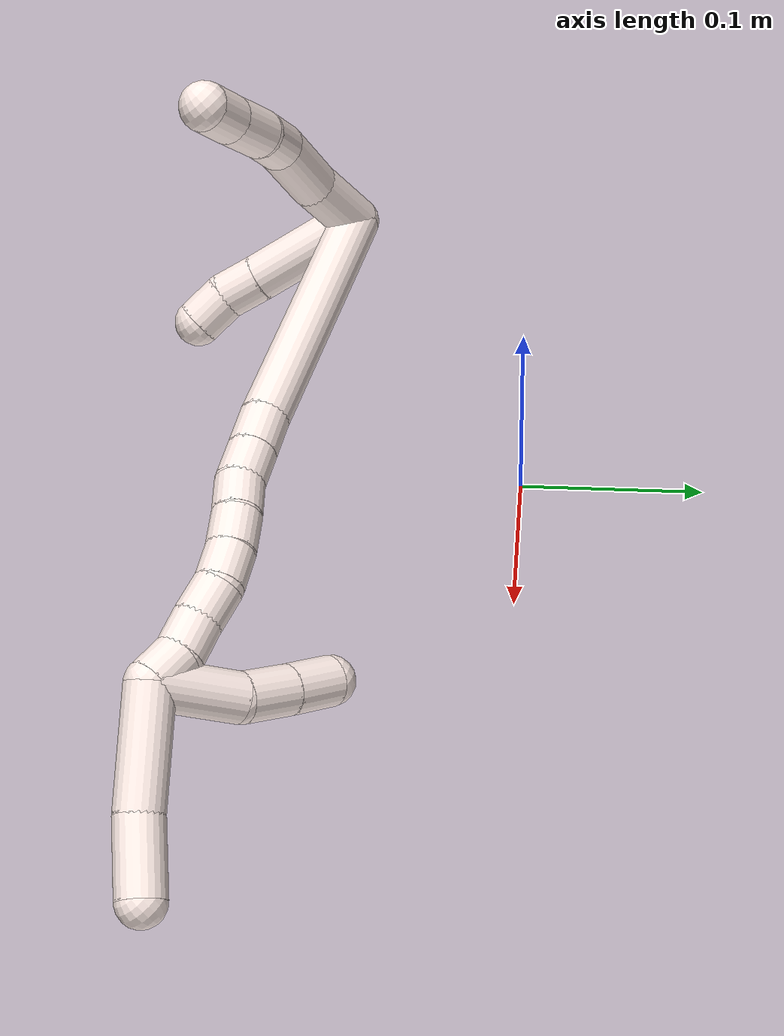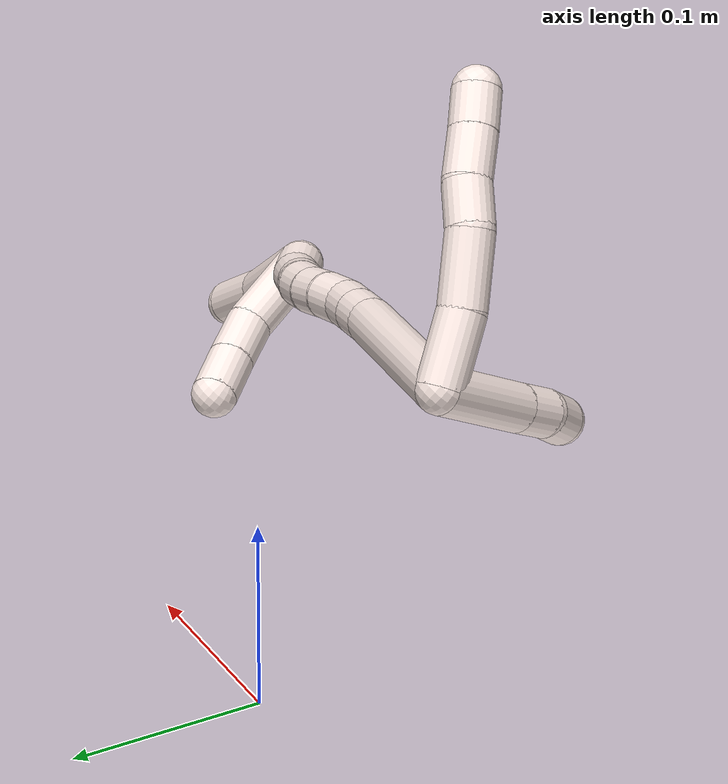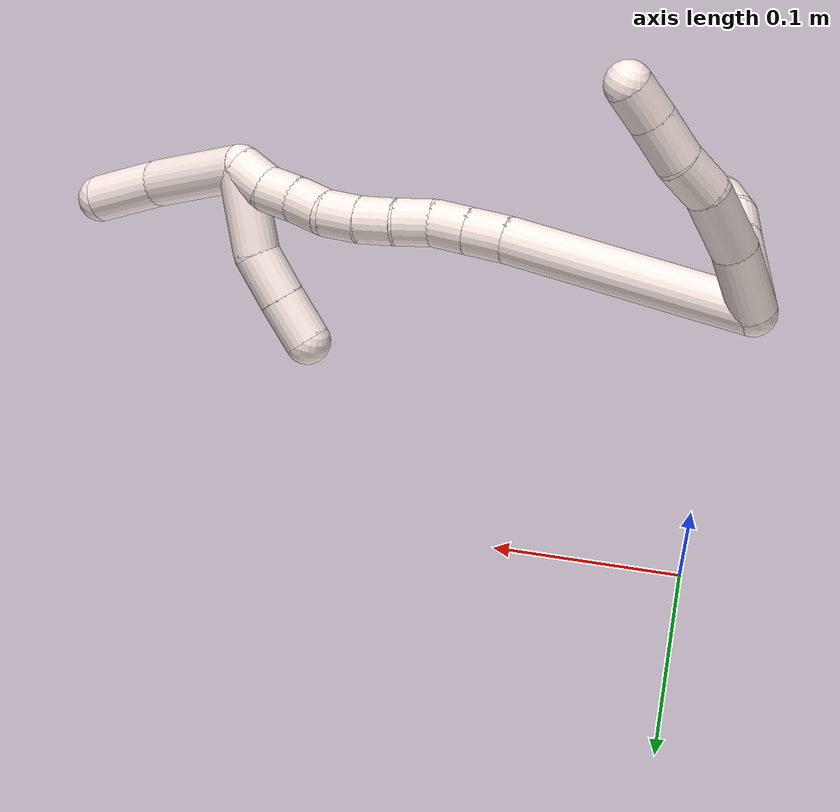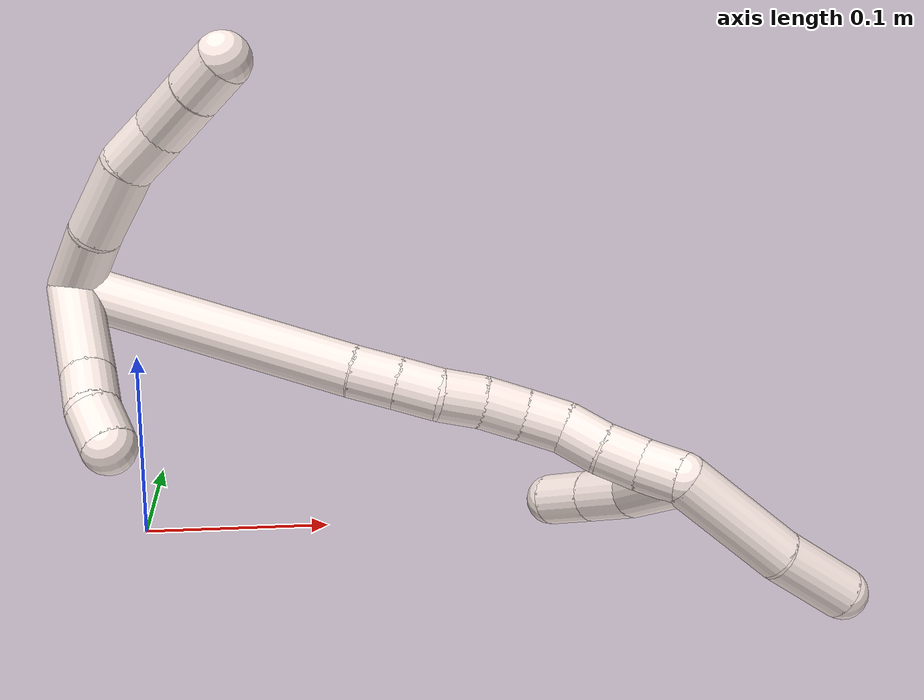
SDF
<sdf version="1.7">
 <world name="default">
  <model name="11">
   <static>0</static>
   <link name="11">
    <collision name="collision-cylinder-e_1_2_8">
     <pose>0.009611 -0.004149 -0.016295 2.89228 0.519248 2.25999</pose>
     <geometry><cylinder><radius>0.0125</radius><length>0.038735</length></cylinder></geometry>
     <surface>
      <friction><ode><mu>1.16</mu><mu2>1.16</mu2><slip1>0</slip1><slip2>0</slip2></ode></friction>
      <contact><ode><kp>1e+06</kp><kd>1</kd><max_vel>0</max_vel><min_depth>0.001</min_depth></ode></contact>
     </surface>
    </collision>
    <visual name="visual-cylinder-e_1_2_8">
     <pose>0.009611 -0.004149 -0.016295 2.89228 0.519248 2.25999</pose>
     <geometry><cylinder><radius>0.0125</radius><length>0.038735</length></cylinder></geometry>
     <material><ambient>1 0.933333 0.909804 1</ambient></material>
    </visual>
    <collision name="collision-cylinder-e_2_8_9">
     <pose>0.029797 -0.015333 -0.047473 2.7 0.571038 1.83597</pose>
     <geometry><cylinder><radius>0.0125</radius><length>0.039134</length></cylinder></geometry>
     <surface>
      <friction><ode><mu>1.16</mu><mu2>1.16</mu2><slip1>0</slip1><slip2>0</slip2></ode></friction>
      <contact><ode><kp>1e+06</kp><kd>1</kd><max_vel>0</max_vel><min_depth>0.001</min_depth></ode></contact>
     </surface>
    </collision>
    <visual name="visual-cylinder-e_2_8_9">
     <pose>0.029797 -0.015333 -0.047473 2.7 0.571038 1.83597</pose>
     <geometry><cylinder><radius>0.0125</radius><length>0.039134</length></cylinder></geometry>
     <material><ambient>1 0.933333 0.909804 1</ambient></material>
    </visual>
    <collision name="collision-cylinder-e_3_9_10">
     <pose>0.049204 -0.02662 -0.069346 2.59515 0.823576 2.00068</pose>
     <geometry><cylinder><radius>0.0125</radius><length>0.024075</length></cylinder></geometry>
     <surface>
      <friction><ode><mu>1.16</mu><mu2>1.16</mu2><slip1>0</slip1><slip2>0</slip2></ode></friction>
      <contact><ode><kp>1e+06</kp><kd>1</kd><max_vel>0</max_vel><min_depth>0.001</min_depth></ode></contact>
     </surface>
    </collision>
    <visual name="visual-cylinder-e_3_9_10">
     <pose>0.049204 -0.02662 -0.069346 2.59515 0.823576 2.00068</pose>
     <geometry><cylinder><radius>0.0125</radius><length>0.024075</length></cylinder></geometry>
     <material><ambient>1 0.933333 0.909804 1</ambient></material>
    </visual>
    <collision name="collision-cylinder-e_4_10_11">
     <pose>0.067456 -0.033382 -0.085261 2.86741 0.793382 2.50529</pose>
     <geometry><cylinder><radius>0.0125</radius><length>0.026439</length></cylinder></geometry>
     <surface>
      <friction><ode><mu>1.16</mu><mu2>1.16</mu2><slip1>0</slip1><slip2>0</slip2></ode></friction>
      <contact><ode><kp>1e+06</kp><kd>1</kd><max_vel>0</max_vel><min_depth>0.001</min_depth></ode></contact>
     </surface>
    </collision>
    <visual name="visual-cylinder-e_4_10_11">
     <pose>0.067456 -0.033382 -0.085261 2.86741 0.793382 2.50529</pose>
     <geometry><cylinder><radius>0.0125</radius><length>0.026439</length></cylinder></geometry>
     <material><ambient>1 0.933333 0.909804 1</ambient></material>
    </visual>
    <collision name="collision-cylinder-e_5_11_6">
     <pose>0.084616 -0.03835 -0.101323 2.80996 0.797943 2.38581</pose>
     <geometry><cylinder><radius>0.0125</radius><length>0.021617</length></cylinder></geometry>
     <surface>
      <friction><ode><mu>1.16</mu><mu2>1.16</mu2><slip1>0</slip1><slip2>0</slip2></ode></friction>
      <contact><ode><kp>1e+06</kp><kd>1</kd><max_vel>0</max_vel><min_depth>0.001</min_depth></ode></contact>
     </surface>
    </collision>
    <visual name="visual-cylinder-e_5_11_6">
     <pose>0.084616 -0.03835 -0.101323 2.80996 0.797943 2.38581</pose>
     <geometry><cylinder><radius>0.0125</radius><length>0.021617</length></cylinder></geometry>
     <material><ambient>1 0.933333 0.909804 1</ambient></material>
    </visual>
    <collision name="collision-cylinder-e_1_2_12">
     <pose>0.011516 0.027019 -0.004198 -1.72494 0.398628 -0.46315</pose>
     <geometry><cylinder><radius>0.0125</radius><length>0.059339</length></cylinder></geometry>
     <surface>
      <friction><ode><mu>1.16</mu><mu2>1.16</mu2><slip1>0</slip1><slip2>0</slip2></ode></friction>
      <contact><ode><kp>1e+06</kp><kd>1</kd><max_vel>0</max_vel><min_depth>0.001</min_depth></ode></contact>
     </surface>
    </collision>
    <visual name="visual-cylinder-e_1_2_12">
     <pose>0.011516 0.027019 -0.004198 -1.72494 0.398628 -0.46315</pose>
     <geometry><cylinder><radius>0.0125</radius><length>0.059339</length></cylinder></geometry>
     <material><ambient>1 0.933333 0.909804 1</ambient></material>
    </visual>
    <collision name="collision-cylinder-e_2_12_13">
     <pose>0.026902 0.063385 -0.010114 -1.75251 0.386649 -0.461657</pose>
     <geometry><cylinder><radius>0.0125</radius><length>0.020521</length></cylinder></geometry>
     <surface>
      <friction><ode><mu>1.16</mu><mu2>1.16</mu2><slip1>0</slip1><slip2>0</slip2></ode></friction>
      <contact><ode><kp>1e+06</kp><kd>1</kd><max_vel>0</max_vel><min_depth>0.001</min_depth></ode></contact>
     </surface>
    </collision>
    <visual name="visual-cylinder-e_2_12_13">
     <pose>0.026902 0.063385 -0.010114 -1.75251 0.386649 -0.461657</pose>
     <geometry><cylinder><radius>0.0125</radius><length>0.020521</length></cylinder></geometry>
     <material><ambient>1 0.933333 0.909804 1</ambient></material>
    </visual>
    <collision name="collision-cylinder-e_3_13_5">
     <pose>0.036181 0.081206 -0.011262 -1.50374 0.567156 -0.532114</pose>
     <geometry><cylinder><radius>0.0125</radius><length>0.020139</length></cylinder></geometry>
     <surface>
      <friction><ode><mu>1.16</mu><mu2>1.16</mu2><slip1>0</slip1><slip2>0</slip2></ode></friction>
      <contact><ode><kp>1e+06</kp><kd>1</kd><max_vel>0</max_vel><min_depth>0.001</min_depth></ode></contact>
     </surface>
    </collision>
    <visual name="visual-cylinder-e_3_13_5">
     <pose>0.036181 0.081206 -0.011262 -1.50374 0.567156 -0.532114</pose>
     <geometry><cylinder><radius>0.0125</radius><length>0.020139</length></cylinder></geometry>
     <material><ambient>1 0.933333 0.909804 1</ambient></material>
    </visual>
    <collision name="collision-cylinder-e_1_2_14">
     <pose>0.066285 0.01316 0.012914 -0.794834 1.29949 -0.617462</pose>
     <geometry><cylinder><radius>0.0125</radius><length>0.137602</length></cylinder></geometry>
     <surface>
      <friction><ode><mu>1.16</mu><mu2>1.16</mu2><slip1>0</slip1><slip2>0</slip2></ode></friction>
      <contact><ode><kp>1e+06</kp><kd>1</kd><max_vel>0</max_vel><min_depth>0.001</min_depth></ode></contact>
     </surface>
    </collision>
    <visual name="visual-cylinder-e_1_2_14">
     <pose>0.066285 0.01316 0.012914 -0.794834 1.29949 -0.617462</pose>
     <geometry><cylinder><radius>0.0125</radius><length>0.137602</length></cylinder></geometry>
     <material><ambient>1 0.933333 0.909804 1</ambient></material>
    </visual>
    <collision name="collision-cylinder-e_2_14_15">
     <pose>0.143065 0.027807 0.028274 -0.546314 1.30453 -0.421606</pose>
     <geometry><cylinder><radius>0.0125</radius><length>0.021758</length></cylinder></geometry>
     <surface>
      <friction><ode><mu>1.16</mu><mu2>1.16</mu2><slip1>0</slip1><slip2>0</slip2></ode></friction>
      <contact><ode><kp>1e+06</kp><kd>1</kd><max_vel>0</max_vel><min_depth>0.001</min_depth></ode></contact>
     </surface>
    </collision>
    <visual name="visual-cylinder-e_2_14_15">
     <pose>0.143065 0.027807 0.028274 -0.546314 1.30453 -0.421606</pose>
     <geometry><cylinder><radius>0.0125</radius><length>0.021758</length></cylinder></geometry>
     <material><ambient>1 0.933333 0.909804 1</ambient></material>
    </visual>
    <collision name="collision-cylinder-e_3_15_16">
     <pose>0.163306 0.030771 0.033009 -0.572815 1.29823 -0.439722</pose>
     <geometry><cylinder><radius>0.0125</radius><length>0.020238</length></cylinder></geometry>
     <surface>
      <friction><ode><mu>1.16</mu><mu2>1.16</mu2><slip1>0</slip1><slip2>0</slip2></ode></friction>
      <contact><ode><kp>1e+06</kp><kd>1</kd><max_vel>0</max_vel><min_depth>0.001</min_depth></ode></contact>
     </surface>
    </collision>
    <visual name="visual-cylinder-e_3_15_16">
     <pose>0.163306 0.030771 0.033009 -0.572815 1.29823 -0.439722</pose>
     <geometry><cylinder><radius>0.0125</radius><length>0.020238</length></cylinder></geometry>
     <material><ambient>1 0.933333 0.909804 1</ambient></material>
    </visual>
    <collision name="collision-cylinder-e_4_16_17">
     <pose>0.182432 0.031773 0.038858 0.1325 1.2052 0.091225</pose>
     <geometry><cylinder><radius>0.0125</radius><length>0.020089</length></cylinder></geometry>
     <surface>
      <friction><ode><mu>1.16</mu><mu2>1.16</mu2><slip1>0</slip1><slip2>0</slip2></ode></friction>
      <contact><ode><kp>1e+06</kp><kd>1</kd><max_vel>0</max_vel><min_depth>0.001</min_depth></ode></contact>
     </surface>
    </collision>
    <visual name="visual-cylinder-e_4_16_17">
     <pose>0.182432 0.031773 0.038858 0.1325 1.2052 0.091225</pose>
     <geometry><cylinder><radius>0.0125</radius><length>0.020089</length></cylinder></geometry>
     <material><ambient>1 0.933333 0.909804 1</ambient></material>
    </visual>
    <collision name="collision-cylinder-e_5_17_18">
     <pose>0.201176 0.032194 0.046118 -0.237399 1.18453 -0.160143</pose>
     <geometry><cylinder><radius>0.0125</radius><length>0.020216</length></cylinder></geometry>
     <surface>
      <friction><ode><mu>1.16</mu><mu2>1.16</mu2><slip1>0</slip1><slip2>0</slip2></ode></friction>
      <contact><ode><kp>1e+06</kp><kd>1</kd><max_vel>0</max_vel><min_depth>0.001</min_depth></ode></contact>
     </surface>
    </collision>
    <visual name="visual-cylinder-e_5_17_18">
     <pose>0.201176 0.032194 0.046118 -0.237399 1.18453 -0.160143</pose>
     <geometry><cylinder><radius>0.0125</radius><length>0.020216</length></cylinder></geometry>
     <material><ambient>1 0.933333 0.909804 1</ambient></material>
    </visual>
    <collision name="collision-cylinder-e_6_18_19">
     <pose>0.220064 0.034729 0.052506 -0.547999 1.25166 -0.40083</pose>
     <geometry><cylinder><radius>0.0125</radius><length>0.020063</length></cylinder></geometry>
     <surface>
      <friction><ode><mu>1.16</mu><mu2>1.16</mu2><slip1>0</slip1><slip2>0</slip2></ode></friction>
      <contact><ode><kp>1e+06</kp><kd>1</kd><max_vel>0</max_vel><min_depth>0.001</min_depth></ode></contact>
     </surface>
    </collision>
    <visual name="visual-cylinder-e_6_18_19">
     <pose>0.220064 0.034729 0.052506 -0.547999 1.25166 -0.40083</pose>
     <geometry><cylinder><radius>0.0125</radius><length>0.020063</length></cylinder></geometry>
     <material><ambient>1 0.933333 0.909804 1</ambient></material>
    </visual>
    <collision name="collision-cylinder-e_7_19_20">
     <pose>0.238442 0.040714 0.05687 -1.2023 1.08649 -0.785263</pose>
     <geometry><cylinder><radius>0.0125</radius><length>0.020006</length></cylinder></geometry>
     <surface>
      <friction><ode><mu>1.16</mu><mu2>1.16</mu2><slip1>0</slip1><slip2>0</slip2></ode></friction>
      <contact><ode><kp>1e+06</kp><kd>1</kd><max_vel>0</max_vel><min_depth>0.001</min_depth></ode></contact>
     </surface>
    </collision>
    <visual name="visual-cylinder-e_7_19_20">
     <pose>0.238442 0.040714 0.05687 -1.2023 1.08649 -0.785263</pose>
     <geometry><cylinder><radius>0.0125</radius><length>0.020006</length></cylinder></geometry>
     <material><ambient>1 0.933333 0.909804 1</ambient></material>
    </visual>
    <collision name="collision-cylinder-e_8_20_21">
     <pose>0.256663 0.04808 0.06034 -1.03551 1.21203 -0.751908</pose>
     <geometry><cylinder><radius>0.0125</radius><length>0.020009</length></cylinder></geometry>
     <surface>
      <friction><ode><mu>1.16</mu><mu2>1.16</mu2><slip1>0</slip1><slip2>0</slip2></ode></friction>
      <contact><ode><kp>1e+06</kp><kd>1</kd><max_vel>0</max_vel><min_depth>0.001</min_depth></ode></contact>
     </surface>
    </collision>
    <visual name="visual-cylinder-e_8_20_21">
     <pose>0.256663 0.04808 0.06034 -1.03551 1.21203 -0.751908</pose>
     <geometry><cylinder><radius>0.0125</radius><length>0.020009</length></cylinder></geometry>
     <material><ambient>1 0.933333 0.909804 1</ambient></material>
    </visual>
    <collision name="collision-cylinder-e_9_21_1">
     <pose>0.27524 0.054881 0.061094 -1.83859 1.16841 -1.42862</pose>
     <geometry><cylinder><radius>0.0125</radius><length>0.020017</length></cylinder></geometry>
     <surface>
      <friction><ode><mu>1.16</mu><mu2>1.16</mu2><slip1>0</slip1><slip2>0</slip2></ode></friction>
      <contact><ode><kp>1e+06</kp><kd>1</kd><max_vel>0</max_vel><min_depth>0.001</min_depth></ode></contact>
     </surface>
    </collision>
    <visual name="visual-cylinder-e_9_21_1">
     <pose>0.27524 0.054881 0.061094 -1.83859 1.16841 -1.42862</pose>
     <geometry><cylinder><radius>0.0125</radius><length>0.020017</length></cylinder></geometry>
     <material><ambient>1 0.933333 0.909804 1</ambient></material>
    </visual>
    <collision name="collision-cylinder-e_1_1_22">
     <pose>0.272472 0.052468 0.078969 0.316482 -0.541797 -0.088578</pose>
     <geometry><cylinder><radius>0.0125</radius><length>0.046452</length></cylinder></geometry>
     <surface>
      <friction><ode><mu>1.16</mu><mu2>1.16</mu2><slip1>0</slip1><slip2>0</slip2></ode></friction>
      <contact><ode><kp>1e+06</kp><kd>1</kd><max_vel>0</max_vel><min_depth>0.001</min_depth></ode></contact>
     </surface>
    </collision>
    <visual name="visual-cylinder-e_1_1_22">
     <pose>0.272472 0.052468 0.078969 0.316482 -0.541797 -0.088578</pose>
     <geometry><cylinder><radius>0.0125</radius><length>0.046452</length></cylinder></geometry>
     <material><ambient>1 0.933333 0.909804 1</ambient></material>
    </visual>
    <collision name="collision-cylinder-e_2_22_23">
     <pose>0.249943 0.04347 0.106123 0.327905 -0.880891 -0.155635</pose>
     <geometry><cylinder><radius>0.0125</radius><length>0.027362</length></cylinder></geometry>
     <surface>
      <friction><ode><mu>1.16</mu><mu2>1.16</mu2><slip1>0</slip1><slip2>0</slip2></ode></friction>
      <contact><ode><kp>1e+06</kp><kd>1</kd><max_vel>0</max_vel><min_depth>0.001</min_depth></ode></contact>
     </surface>
    </collision>
    <visual name="visual-cylinder-e_2_22_23">
     <pose>0.249943 0.04347 0.106123 0.327905 -0.880891 -0.155635</pose>
     <geometry><cylinder><radius>0.0125</radius><length>0.027362</length></cylinder></geometry>
     <material><ambient>1 0.933333 0.909804 1</ambient></material>
    </visual>
    <collision name="collision-cylinder-e_3_23_4">
     <pose>0.229015 0.038088 0.121925 0.328713 -0.91484 -0.162917</pose>
     <geometry><cylinder><radius>0.0125</radius><length>0.026186</length></cylinder></geometry>
     <surface>
      <friction><ode><mu>1.16</mu><mu2>1.16</mu2><slip1>0</slip1><slip2>0</slip2></ode></friction>
      <contact><ode><kp>1e+06</kp><kd>1</kd><max_vel>0</max_vel><min_depth>0.001</min_depth></ode></contact>
     </surface>
    </collision>
    <visual name="visual-cylinder-e_3_23_4">
     <pose>0.229015 0.038088 0.121925 0.328713 -0.91484 -0.162917</pose>
     <geometry><cylinder><radius>0.0125</radius><length>0.026186</length></cylinder></geometry>
     <material><ambient>1 0.933333 0.909804 1</ambient></material>
    </visual>
    <collision name="collision-cylinder-e_1_1_24">
     <pose>0.306775 0.067976 0.078221 -0.473844 0.830131 -0.212006</pose>
     <geometry><cylinder><radius>0.0125</radius><length>0.060501</length></cylinder></geometry>
     <surface>
      <friction><ode><mu>1.16</mu><mu2>1.16</mu2><slip1>0</slip1><slip2>0</slip2></ode></friction>
      <contact><ode><kp>1e+06</kp><kd>1</kd><max_vel>0</max_vel><min_depth>0.001</min_depth></ode></contact>
     </surface>
    </collision>
    <visual name="visual-cylinder-e_1_1_24">
     <pose>0.306775 0.067976 0.078221 -0.473844 0.830131 -0.212006</pose>
     <geometry><cylinder><radius>0.0125</radius><length>0.060501</length></cylinder></geometry>
     <material><ambient>1 0.933333 0.909804 1</ambient></material>
    </visual>
    <collision name="collision-cylinder-e_2_24_3">
     <pose>0.344054 0.080515 0.108875 -0.252685 0.858977 -0.116219</pose>
     <geometry><cylinder><radius>0.0125</radius><length>0.039499</length></cylinder></geometry>
     <surface>
      <friction><ode><mu>1.16</mu><mu2>1.16</mu2><slip1>0</slip1><slip2>0</slip2></ode></friction>
      <contact><ode><kp>1e+06</kp><kd>1</kd><max_vel>0</max_vel><min_depth>0.001</min_depth></ode></contact>
     </surface>
    </collision>
    <visual name="visual-cylinder-e_2_24_3">
     <pose>0.344054 0.080515 0.108875 -0.252685 0.858977 -0.116219</pose>
     <geometry><cylinder><radius>0.0125</radius><length>0.039499</length></cylinder></geometry>
     <material><ambient>1 0.933333 0.909804 1</ambient></material>
    </visual>
    <collision name="collision-sphere-3">
     <pose>0.359008 0.08374 0.121366 0 -0 0</pose>
     <geometry><sphere><radius>0.0125</radius></sphere></geometry>
     <surface>
      <friction><ode><mu>1.16</mu><mu2>1.16</mu2><slip1>0</slip1><slip2>0</slip2></ode></friction>
      <contact><ode><kp>1e+06</kp><kd>1</kd><max_vel>0</max_vel><min_depth>0.001</min_depth></ode></contact>
     </surface>
    </collision>
    <visual name="visual-sphere-3">
     <pose>0.359008 0.08374 0.121366 0 -0 0</pose>
     <geometry><sphere><radius>0.0125</radius></sphere></geometry>
     <material><ambient>1 0.933333 0.909804 1</ambient></material>
    </visual>
    <collision name="collision-sphere-24">
     <pose>0.3291 0.07729 0.096384 0 -0 0</pose>
     <geometry><sphere><radius>0.0125</radius></sphere></geometry>
     <surface>
      <friction><ode><mu>1.16</mu><mu2>1.16</mu2><slip1>0</slip1><slip2>0</slip2></ode></friction>
      <contact><ode><kp>1e+06</kp><kd>1</kd><max_vel>0</max_vel><min_depth>0.001</min_depth></ode></contact>
     </surface>
    </collision>
    <visual name="visual-sphere-24">
     <pose>0.3291 0.07729 0.096384 0 -0 0</pose>
     <geometry><sphere><radius>0.0125</radius></sphere></geometry>
     <material><ambient>1 0.933333 0.909804 1</ambient></material>
    </visual>
    <collision name="collision-sphere-4">
     <pose>0.218639 0.03551 0.129483 0 -0 0</pose>
     <geometry><sphere><radius>0.0125</radius></sphere></geometry>
     <surface>
      <friction><ode><mu>1.16</mu><mu2>1.16</mu2><slip1>0</slip1><slip2>0</slip2></ode></friction>
      <contact><ode><kp>1e+06</kp><kd>1</kd><max_vel>0</max_vel><min_depth>0.001</min_depth></ode></contact>
     </surface>
    </collision>
    <visual name="visual-sphere-4">
     <pose>0.218639 0.03551 0.129483 0 -0 0</pose>
     <geometry><sphere><radius>0.0125</radius></sphere></geometry>
     <material><ambient>1 0.933333 0.909804 1</ambient></material>
    </visual>
    <collision name="collision-sphere-23">
     <pose>0.239391 0.040666 0.114367 0 -0 0</pose>
     <geometry><sphere><radius>0.0125</radius></sphere></geometry>
     <surface>
      <friction><ode><mu>1.16</mu><mu2>1.16</mu2><slip1>0</slip1><slip2>0</slip2></ode></friction>
      <contact><ode><kp>1e+06</kp><kd>1</kd><max_vel>0</max_vel><min_depth>0.001</min_depth></ode></contact>
     </surface>
    </collision>
    <visual name="visual-sphere-23">
     <pose>0.239391 0.040666 0.114367 0 -0 0</pose>
     <geometry><sphere><radius>0.0125</radius></sphere></geometry>
     <material><ambient>1 0.933333 0.909804 1</ambient></material>
    </visual>
    <collision name="collision-sphere-22">
     <pose>0.260495 0.046275 0.09788 0 -0 0</pose>
     <geometry><sphere><radius>0.0125</radius></sphere></geometry>
     <surface>
      <friction><ode><mu>1.16</mu><mu2>1.16</mu2><slip1>0</slip1><slip2>0</slip2></ode></friction>
      <contact><ode><kp>1e+06</kp><kd>1</kd><max_vel>0</max_vel><min_depth>0.001</min_depth></ode></contact>
     </surface>
    </collision>
    <visual name="visual-sphere-22">
     <pose>0.260495 0.046275 0.09788 0 -0 0</pose>
     <geometry><sphere><radius>0.0125</radius></sphere></geometry>
     <material><ambient>1 0.933333 0.909804 1</ambient></material>
    </visual>
    <collision name="collision-sphere-1">
     <pose>0.284449 0.058661 0.060057 0 -0 0</pose>
     <geometry><sphere><radius>0.0125</radius></sphere></geometry>
     <surface>
      <friction><ode><mu>1.16</mu><mu2>1.16</mu2><slip1>0</slip1><slip2>0</slip2></ode></friction>
      <contact><ode><kp>1e+06</kp><kd>1</kd><max_vel>0</max_vel><min_depth>0.001</min_depth></ode></contact>
     </surface>
    </collision>
    <visual name="visual-sphere-1">
     <pose>0.284449 0.058661 0.060057 0 -0 0</pose>
     <geometry><sphere><radius>0.0125</radius></sphere></geometry>
     <material><ambient>1 0.933333 0.909804 1</ambient></material>
    </visual>
    <collision name="collision-sphere-21">
     <pose>0.266031 0.051102 0.062132 0 -0 0</pose>
     <geometry><sphere><radius>0.0125</radius></sphere></geometry>
     <surface>
      <friction><ode><mu>1.16</mu><mu2>1.16</mu2><slip1>0</slip1><slip2>0</slip2></ode></friction>
      <contact><ode><kp>1e+06</kp><kd>1</kd><max_vel>0</max_vel><min_depth>0.001</min_depth></ode></contact>
     </surface>
    </collision>
    <visual name="visual-sphere-21">
     <pose>0.266031 0.051102 0.062132 0 -0 0</pose>
     <geometry><sphere><radius>0.0125</radius></sphere></geometry>
     <material><ambient>1 0.933333 0.909804 1</ambient></material>
    </visual>
    <collision name="collision-sphere-6">
     <pose>0.092354 -0.040807 -0.108458 0 -0 0</pose>
     <geometry><sphere><radius>0.0125</radius></sphere></geometry>
     <surface>
      <friction><ode><mu>1.16</mu><mu2>1.16</mu2><slip1>0</slip1><slip2>0</slip2></ode></friction>
      <contact><ode><kp>1e+06</kp><kd>1</kd><max_vel>0</max_vel><min_depth>0.001</min_depth></ode></contact>
     </surface>
    </collision>
    <visual name="visual-sphere-6">
     <pose>0.092354 -0.040807 -0.108458 0 -0 0</pose>
     <geometry><sphere><radius>0.0125</radius></sphere></geometry>
     <material><ambient>1 0.933333 0.909804 1</ambient></material>
    </visual>
    <collision name="collision-sphere-11">
     <pose>0.076878 -0.035893 -0.094188 0 -0 0</pose>
     <geometry><sphere><radius>0.0125</radius></sphere></geometry>
     <surface>
      <friction><ode><mu>1.16</mu><mu2>1.16</mu2><slip1>0</slip1><slip2>0</slip2></ode></friction>
      <contact><ode><kp>1e+06</kp><kd>1</kd><max_vel>0</max_vel><min_depth>0.001</min_depth></ode></contact>
     </surface>
    </collision>
    <visual name="visual-sphere-11">
     <pose>0.076878 -0.035893 -0.094188 0 -0 0</pose>
     <geometry><sphere><radius>0.0125</radius></sphere></geometry>
     <material><ambient>1 0.933333 0.909804 1</ambient></material>
    </visual>
    <collision name="collision-sphere-10">
     <pose>0.058034 -0.030871 -0.076335 0 -0 0</pose>
     <geometry><sphere><radius>0.0125</radius></sphere></geometry>
     <surface>
      <friction><ode><mu>1.16</mu><mu2>1.16</mu2><slip1>0</slip1><slip2>0</slip2></ode></friction>
      <contact><ode><kp>1e+06</kp><kd>1</kd><max_vel>0</max_vel><min_depth>0.001</min_depth></ode></contact>
     </surface>
    </collision>
    <visual name="visual-sphere-10">
     <pose>0.058034 -0.030871 -0.076335 0 -0 0</pose>
     <geometry><sphere><radius>0.0125</radius></sphere></geometry>
     <material><ambient>1 0.933333 0.909804 1</ambient></material>
    </visual>
    <collision name="collision-sphere-9">
     <pose>0.040374 -0.022369 -0.062356 0 -0 0</pose>
     <geometry><sphere><radius>0.0125</radius></sphere></geometry>
     <surface>
      <friction><ode><mu>1.16</mu><mu2>1.16</mu2><slip1>0</slip1><slip2>0</slip2></ode></friction>
      <contact><ode><kp>1e+06</kp><kd>1</kd><max_vel>0</max_vel><min_depth>0.001</min_depth></ode></contact>
     </surface>
    </collision>
    <visual name="visual-sphere-9">
     <pose>0.040374 -0.022369 -0.062356 0 -0 0</pose>
     <geometry><sphere><radius>0.0125</radius></sphere></geometry>
     <material><ambient>1 0.933333 0.909804 1</ambient></material>
    </visual>
    <collision name="collision-sphere-2">
     <geometry><sphere><radius>0.0125</radius></sphere></geometry>
     <surface>
      <friction><ode><mu>1.16</mu><mu2>1.16</mu2><slip1>0</slip1><slip2>0</slip2></ode></friction>
      <contact><ode><kp>1e+06</kp><kd>1</kd><max_vel>0</max_vel><min_depth>0.001</min_depth></ode></contact>
     </surface>
    </collision>
    <visual name="visual-sphere-2">
     <geometry><sphere><radius>0.0125</radius></sphere></geometry>
     <material><ambient>1 0.933333 0.909804 1</ambient></material>
    </visual>
    <collision name="collision-sphere-19">
     <pose>0.229589 0.036369 0.055193 0 -0 0</pose>
     <geometry><sphere><radius>0.0125</radius></sphere></geometry>
     <surface>
      <friction><ode><mu>1.16</mu><mu2>1.16</mu2><slip1>0</slip1><slip2>0</slip2></ode></friction>
      <contact><ode><kp>1e+06</kp><kd>1</kd><max_vel>0</max_vel><min_depth>0.001</min_depth></ode></contact>
     </surface>
    </collision>
    <visual name="visual-sphere-19">
     <pose>0.229589 0.036369 0.055193 0 -0 0</pose>
     <geometry><sphere><radius>0.0125</radius></sphere></geometry>
     <material><ambient>1 0.933333 0.909804 1</ambient></material>
    </visual>
    <collision name="collision-sphere-8">
     <pose>0.019221 -0.008298 -0.03259 0 -0 0</pose>
     <geometry><sphere><radius>0.0125</radius></sphere></geometry>
     <surface>
      <friction><ode><mu>1.16</mu><mu2>1.16</mu2><slip1>0</slip1><slip2>0</slip2></ode></friction>
      <contact><ode><kp>1e+06</kp><kd>1</kd><max_vel>0</max_vel><min_depth>0.001</min_depth></ode></contact>
     </surface>
    </collision>
    <visual name="visual-sphere-8">
     <pose>0.019221 -0.008298 -0.03259 0 -0 0</pose>
     <geometry><sphere><radius>0.0125</radius></sphere></geometry>
     <material><ambient>1 0.933333 0.909804 1</ambient></material>
    </visual>
    <collision name="collision-sphere-12">
     <pose>0.023033 0.054038 -0.008396 0 -0 0</pose>
     <geometry><sphere><radius>0.0125</radius></sphere></geometry>
     <surface>
      <friction><ode><mu>1.16</mu><mu2>1.16</mu2><slip1>0</slip1><slip2>0</slip2></ode></friction>
      <contact><ode><kp>1e+06</kp><kd>1</kd><max_vel>0</max_vel><min_depth>0.001</min_depth></ode></contact>
     </surface>
    </collision>
    <visual name="visual-sphere-12">
     <pose>0.023033 0.054038 -0.008396 0 -0 0</pose>
     <geometry><sphere><radius>0.0125</radius></sphere></geometry>
     <material><ambient>1 0.933333 0.909804 1</ambient></material>
    </visual>
    <collision name="collision-sphere-13">
     <pose>0.030771 0.072732 -0.011831 0 -0 0</pose>
     <geometry><sphere><radius>0.0125</radius></sphere></geometry>
     <surface>
      <friction><ode><mu>1.16</mu><mu2>1.16</mu2><slip1>0</slip1><slip2>0</slip2></ode></friction>
      <contact><ode><kp>1e+06</kp><kd>1</kd><max_vel>0</max_vel><min_depth>0.001</min_depth></ode></contact>
     </surface>
    </collision>
    <visual name="visual-sphere-13">
     <pose>0.030771 0.072732 -0.011831 0 -0 0</pose>
     <geometry><sphere><radius>0.0125</radius></sphere></geometry>
     <material><ambient>1 0.933333 0.909804 1</ambient></material>
    </visual>
    <collision name="collision-sphere-5">
     <pose>0.041591 0.08968 -0.010693 0 -0 0</pose>
     <geometry><sphere><radius>0.0125</radius></sphere></geometry>
     <surface>
      <friction><ode><mu>1.16</mu><mu2>1.16</mu2><slip1>0</slip1><slip2>0</slip2></ode></friction>
      <contact><ode><kp>1e+06</kp><kd>1</kd><max_vel>0</max_vel><min_depth>0.001</min_depth></ode></contact>
     </surface>
    </collision>
    <visual name="visual-sphere-5">
     <pose>0.041591 0.08968 -0.010693 0 -0 0</pose>
     <geometry><sphere><radius>0.0125</radius></sphere></geometry>
     <material><ambient>1 0.933333 0.909804 1</ambient></material>
    </visual>
    <collision name="collision-sphere-14">
     <pose>0.132569 0.02632 0.025828 0 -0 0</pose>
     <geometry><sphere><radius>0.0125</radius></sphere></geometry>
     <surface>
      <friction><ode><mu>1.16</mu><mu2>1.16</mu2><slip1>0</slip1><slip2>0</slip2></ode></friction>
      <contact><ode><kp>1e+06</kp><kd>1</kd><max_vel>0</max_vel><min_depth>0.001</min_depth></ode></contact>
     </surface>
    </collision>
    <visual name="visual-sphere-14">
     <pose>0.132569 0.02632 0.025828 0 -0 0</pose>
     <geometry><sphere><radius>0.0125</radius></sphere></geometry>
     <material><ambient>1 0.933333 0.909804 1</ambient></material>
    </visual>
    <collision name="collision-sphere-15">
     <pose>0.153561 0.029294 0.03072 0 -0 0</pose>
     <geometry><sphere><radius>0.0125</radius></sphere></geometry>
     <surface>
      <friction><ode><mu>1.16</mu><mu2>1.16</mu2><slip1>0</slip1><slip2>0</slip2></ode></friction>
      <contact><ode><kp>1e+06</kp><kd>1</kd><max_vel>0</max_vel><min_depth>0.001</min_depth></ode></contact>
     </surface>
    </collision>
    <visual name="visual-sphere-15">
     <pose>0.153561 0.029294 0.03072 0 -0 0</pose>
     <geometry><sphere><radius>0.0125</radius></sphere></geometry>
     <material><ambient>1 0.933333 0.909804 1</ambient></material>
    </visual>
    <collision name="collision-sphere-16">
     <pose>0.173052 0.032247 0.035298 0 -0 0</pose>
     <geometry><sphere><radius>0.0125</radius></sphere></geometry>
     <surface>
      <friction><ode><mu>1.16</mu><mu2>1.16</mu2><slip1>0</slip1><slip2>0</slip2></ode></friction>
      <contact><ode><kp>1e+06</kp><kd>1</kd><max_vel>0</max_vel><min_depth>0.001</min_depth></ode></contact>
     </surface>
    </collision>
    <visual name="visual-sphere-16">
     <pose>0.173052 0.032247 0.035298 0 -0 0</pose>
     <geometry><sphere><radius>0.0125</radius></sphere></geometry>
     <material><ambient>1 0.933333 0.909804 1</ambient></material>
    </visual>
    <collision name="collision-sphere-17">
     <pose>0.191813 0.031299 0.042417 0 -0 0</pose>
     <geometry><sphere><radius>0.0125</radius></sphere></geometry>
     <surface>
      <friction><ode><mu>1.16</mu><mu2>1.16</mu2><slip1>0</slip1><slip2>0</slip2></ode></friction>
      <contact><ode><kp>1e+06</kp><kd>1</kd><max_vel>0</max_vel><min_depth>0.001</min_depth></ode></contact>
     </surface>
    </collision>
    <visual name="visual-sphere-17">
     <pose>0.191813 0.031299 0.042417 0 -0 0</pose>
     <geometry><sphere><radius>0.0125</radius></sphere></geometry>
     <material><ambient>1 0.933333 0.909804 1</ambient></material>
    </visual>
    <collision name="collision-sphere-18">
     <pose>0.210539 0.03309 0.049819 0 -0 0</pose>
     <geometry><sphere><radius>0.0125</radius></sphere></geometry>
     <surface>
      <friction><ode><mu>1.16</mu><mu2>1.16</mu2><slip1>0</slip1><slip2>0</slip2></ode></friction>
      <contact><ode><kp>1e+06</kp><kd>1</kd><max_vel>0</max_vel><min_depth>0.001</min_depth></ode></contact>
     </surface>
    </collision>
    <visual name="visual-sphere-18">
     <pose>0.210539 0.03309 0.049819 0 -0 0</pose>
     <geometry><sphere><radius>0.0125</radius></sphere></geometry>
     <material><ambient>1 0.933333 0.909804 1</ambient></material>
    </visual>
    <collision name="collision-sphere-20">
     <pose>0.247295 0.045059 0.058548 0 -0 0</pose>
     <geometry><sphere><radius>0.0125</radius></sphere></geometry>
     <surface>
      <friction><ode><mu>1.16</mu><mu2>1.16</mu2><slip1>0</slip1><slip2>0</slip2></ode></friction>
      <contact><ode><kp>1e+06</kp><kd>1</kd><max_vel>0</max_vel><min_depth>0.001</min_depth></ode></contact>
     </surface>
    </collision>
    <visual name="visual-sphere-20">
     <pose>0.247295 0.045059 0.058548 0 -0 0</pose>
     <geometry><sphere><radius>0.0125</radius></sphere></geometry>
     <material><ambient>1 0.933333 0.909804 1</ambient></material>
    </visual>
    <inertial>
     <pose>0.145392 0.028324 0.025208 0 -0 0</pose>
     <mass>0.75</mass>
     <inertia>
      <ixx>8.8e-05</ixx>
      <ixy>0</ixy>
      <ixz>0</ixz>
      <iyy>0.000253</iyy>
      <iyz>0</iyz>
      <izz>-0.000315</izz>
     </inertia>
    </inertial>
   </link>
   <pose>-0.016026 -0.089312 0.159146 -2.41065 -0.021247 -0.244575</pose>
  </model>
 </world>
</sdf>
